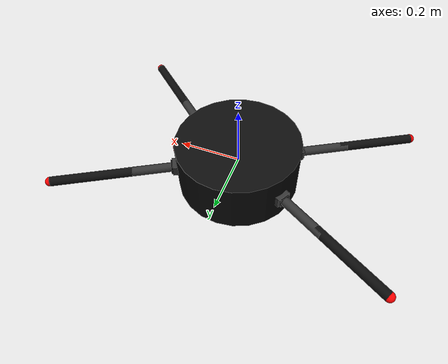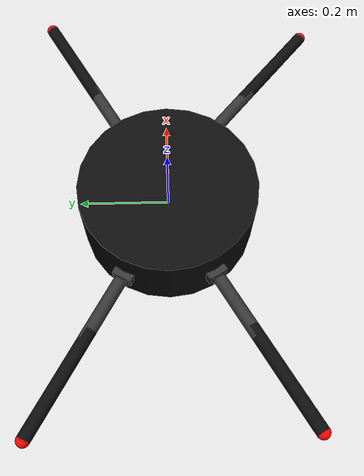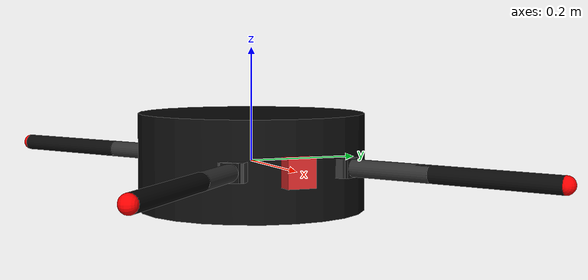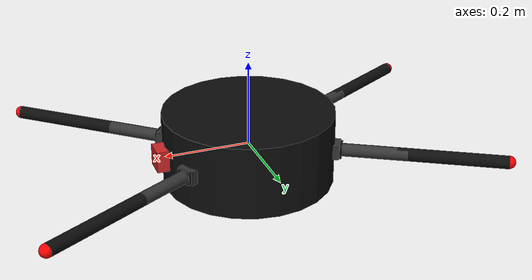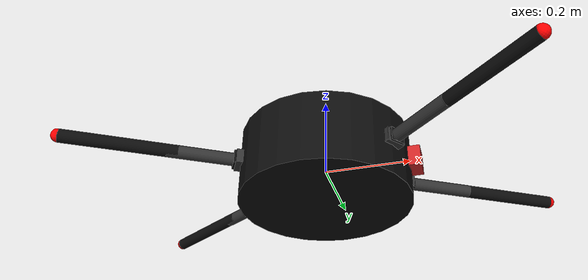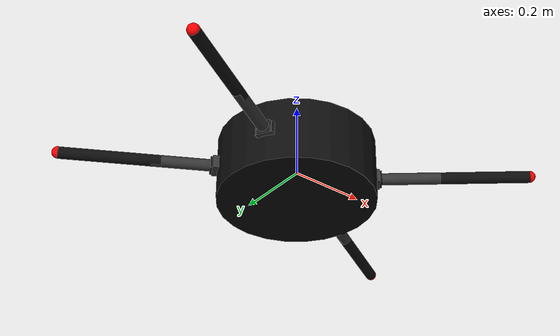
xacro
<?xml version="1.0" ?>
<robot name="ardent" xmlns:xacro="http://www.ros.org/wiki/xacro">

  <xacro:include filename="$(find ardent_description)/config/robot/urdf/ardent_urdf_quad.xacro"/>
  <xacro:include filename="$(find ardent_description)/config/robot/urdf/camera.xacro"/>

  <!-- for more info visit: http://wiki.ros.org/urdf/Tutorials -->

  <link name="base_link"/>

  <xacro:ardent parent="base_link">
      <origin xyz="0 0 0" rpy="0 0 0" />
  </xacro:ardent>

  <gazebo>
    <plugin filename="libgazebo_ros_control.so" name="gazebo_ros_control">
    </plugin>
  </gazebo>

</robot>

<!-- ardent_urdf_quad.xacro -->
<robot xmlns:xacro="http://www.ros.org/wiki/xacro">

<xacro:property name="connect_offset" value="0.01" />
<xacro:property name="femur_offset_y" value="-0.125" />
<xacro:property name="femur_offset_z" value="-0.125" />

<xacro:property name="joint_lower_limit" value ="-${1.5}"/>
<xacro:property name="joint_upper_limit" value ="${1.5}"/>
<xacro:property name="camera_link" value="0.05" />  <!-- Size of square 'camera' box -->

<xacro:macro name="ardent" params="parent *origin">

    <joint name="j_ardent_attachment" type="fixed">
      <parent link="${parent}"/>
      <child link="body"/>
      <xacro:insert_block name="origin" />
    </joint>
    <link name="body">
      <inertial>
        <origin xyz="0 0 0" />
        <mass value="6.8"/>
        <inertia ixx="3.1081800"  ixy="-0.25460189"  ixz="2.0318174" iyy="6.3787776" iyz="0.16417863" izz="5.3316425" />
      </inertial>
      <visual>
        <!--origin xyz="-0.0235 0 -0.03525" rpy="0 0 0" /-->
        <origin xyz="0 0 0" rpy="0 0 0" />
        <geometry>
          <cylinder radius="0.2" length="0.17"/>
          <!--box size="0.102 0.109 0.106" /-->
        </geometry>
        <material name="Orange">
        <color rgba="12 12 12 1.0"/>
      </material>
      </visual>
      <collision>
        <origin xyz="0 0 0" rpy="0 0 0" />
        <geometry>
          <cylinder radius="0.2" length="0.17"/>
        </geometry>
      </collision>
    </link>

    <gazebo>
      <plugin name="p3d_base_controller" filename="libgazebo_ros_p3d.so">
        <alwaysOn>true</alwaysOn>
        <updateRate>50.0</updateRate>
        <bodyName>body</bodyName>
        <topicName>odom</topicName>
        <gaussianNoise>0.01</gaussianNoise>
        <frameNamespace>world</frameNamespace>
        <xyzOffsets> 0 0 0 </xyzOffsets>
        <rpyOffsets>0 0 0 </rpyOffsets>
      </plugin>
    </gazebo>

    <plugin name="gazebo_ros_imu_plugin" filename="libgazebo_ros_imu.so">
      <alwaysOn>true</alwaysOn>
      <bodyName>body</bodyName>
      <topicName>imu/data</topicName>
      <serviceName>imu/service</serviceName>
      <gaussianNoise>0.0</gaussianNoise>
      <updateRate>800.0</updateRate>
    </plugin>

    <!-- Build Leg -->
    <xacro:leg_l xyz="0.175 -0.1  0.001116"  rpy="0 0 5.576" suffix="1"/>
    <xacro:leg_l xyz="-0.175 -0.1  0.001116"  rpy="0 0 -2.62" suffix="2"/>

    <xacro:leg_l xyz="0.175 0.1  0.001116"  rpy="0 0 0.52" suffix="3"/>
    <xacro:leg_l xyz="-0.175 0.1  0.001116"  rpy="0 0 2.62" suffix="4"/>

</xacro:macro>

<xacro:macro name="leg_l" params="xyz rpy suffix">
  <link name="coxa_${suffix}">
    <inertial>
      <origin xyz="0 0 0" rpy="0 0 0"  />
      <mass value="0.024357719"/>
     <inertia ixx="0.0051411124"  ixy="-0.00057530255"  ixz="-0.000024729049" iyy="0.0081915737" iyz="-0.000019223094" izz="0.0011379812" />
    </inertial>
    <visual>
      <origin xyz="0 0 0" rpy="0 0 0"  />
      <geometry>
        <box size="0.022 0.045 0.0325" />
      </geometry>
      <material name="Grey">
        <color rgba="0.20 0.20 0.20 1.0"/>
      </material>
    </visual>
    <collision>
      <origin xyz="0 0 0" rpy="0 0 0"  />
      <geometry>
        <box size="0.022 0.045 0.0325" />
      </geometry>
    </collision>
  </link>

  <link name="c2_${suffix}">
    <inertial>
      <origin xyz="0 0 0" rpy="0 0 0"  />
      <mass value="0.024357719"/>
     <inertia ixx="0.0051411124"  ixy="-0.00057530255"  ixz="-0.000024729049" iyy="0.0081915737" iyz="-0.000019223094" izz="0.0011379812" />
    </inertial>
    <visual>
      <origin xyz="0 0 0" rpy="0 0 0"  />
      <geometry>
        <box size="0.005 0.0325 0.0325" />
      </geometry>
      <material name="Orange">
        <color rgba="12 12 12 1.0"/>
      </material>
    </visual>
    <collision>
      <origin xyz="0 0 0" rpy="0 0 0"  />
      <geometry>
        <box size="0.005 0.0325 0.0325" />
      </geometry>
    </collision>
  </link>

  <link name="femur_${suffix}">
    <inertial>
      <origin xyz="1 0 0" rpy="0 0 0"  />
      <mass value="0.0286"/>
     <inertia ixx="0.00059"  ixy="-0.0"  ixz="-0.0" iyy="0.0" iyz="-0.0" izz="0.00059" />
    </inertial>
    <visual>
      <origin xyz="0.075 0 0" rpy="0 1.57 0"  />
      <geometry>
        <cylinder  radius="0.015" length="0.15" />
      </geometry>
      <material name="Grey">
        <color rgba="0.20 0.20 0.20 1.0"/>
      </material>
    </visual>
    <collision>
      <origin xyz="0.075 0 0" rpy="0 1.57 0"  />
      <geometry>
        <cylinder  radius="0.015" length="0.15" />
      </geometry>
    </collision>
  </link>

  <link name="tibia_${suffix}">
    <inertial>
      <origin xyz="0 0 0" rpy="0 0 0"  />
      <mass value="0.0286"/>
      <!-- g/mm^2 -->
     <inertia ixx="0.00059"  ixy="-0.0"  ixz="-0.0" iyy="0.0" iyz="-0.0" izz="0.00059" />
    </inertial>
    <visual>
      <origin xyz="0.125 0 0" rpy="1.57 0 1.57"  />
      <geometry>
        <cylinder radius="0.015" length="0.25" />
      </geometry>
      <material name="Orange">
        <color rgba="12 12 12 1.0"/>
      </material>
    </visual>
    <collision>
      <origin xyz="0.125 0 0" rpy="1.57 0 1.57"  />
      <geometry>
        <cylinder radius="0.015" length="0.25" />
      </geometry>
    </collision>
  </link>

  <link name="contact_sensor_${suffix}">
    <inertial>
      <origin xyz="0 0 0" rpy="0 0 0"  />
      <mass value="0.005"/>
       <inertia ixx="1.28e-06"  ixy="-0.0"  ixz="-0.0" iyy="1.28e-06" iyz="-0.0" izz="1.28e-06" />
    </inertial>
    <visual>
      <origin xyz="0 0 0" rpy="0 0 0"  />
      <geometry>
        <sphere radius="0.015"/>
      </geometry>
      <material name="Black">
        <color rgba="1.0 0 0 0"/>
      </material>
    </visual>
    <collision>
      <origin xyz="0.0 0 0" rpy="0.0 0 0.0"  />
      <geometry>
        <sphere radius="0.015"/>
      </geometry>
    </collision>
  </link>

  <!-- Joint Definitions -->
  <joint name="j_coxa_${suffix}" type="revolute">
    <parent link="body"/>
    <child link="coxa_${suffix}"/>
    <origin xyz="${xyz}" rpy="${rpy}" />
    <axis xyz="0 0 1" />
    <limit effort="30" velocity="0.5" lower="-3.14" upper="3.14" />
  </joint>

  <joint name="j_c2_${suffix}" type="fixed">
    <parent link="coxa_${suffix}"/>
    <child link="c2_${suffix}"/>
    <origin xyz="0.0135 0 0" rpy="0 0 0" />
    <limit effort="30" velocity="0.5" lower="-3.14" upper="3.14" />
  </joint>

  <joint name="j_femur_${suffix}" type="revolute">
    <parent link="c2_${suffix}"/>
    <child link="femur_${suffix}"/>
    <origin xyz="0 0 0" rpy=" 1.57 0 0" />
    <axis xyz="0 0 1" />
    <limit effort="30" velocity="0.5" lower="-3.14" upper="3.14" />
  </joint>

  <joint name="j_tibia_${suffix}" type="revolute">
    <parent link="femur_${suffix}"/>
    <child link="tibia_${suffix}"/>
    <origin xyz="0.125 0 0" rpy="0 0 0" />
    <axis xyz="0 0 1" />
    <limit effort="30" velocity="0.5" lower="-3.14" upper="3.14" />
  </joint>

  <joint name="j_contact_sensor_${suffix}" type="fixed">
    <parent link="tibia_${suffix}"/>
    <child link="contact_sensor_${suffix}"/>
    <origin xyz="0.25 0 0" rpy="0 0 0" />
  </joint>

  <!-- Force/Contact Sensor -->
  <!-- This should be added later to provide the force sensor feeback to the rest of the robot -->
  <gazebo reference="contact_sensor_${suffix}">
    <sensor name="contact_sensor_${suffix}" type="contact">
      <always_on>true</always_on>
      <update_rate>30</update_rate>
      <contact>
        <collision>contact_sensor_${suffix}_link_collision</collision>
      </contact>
      <plugin name="bumper0_plugin" filename="libgazebo_ros_bumper.so">
        <bumperTopicName>leg_${suffix}/contact_sensor_state</bumperTopicName>
        <frameName>contact_sensor_${suffix}</frameName>
      </plugin>
    </sensor>
  </gazebo>

  <!-- Transmissions -->
  <transmission name="t_coxa_${suffix}">
    <type>transmission_interface/SimpleTransmission</type>
    <joint name="j_coxa_${suffix}">
      <hardwareInterface>hardware_interface/EffortJointInterface</hardwareInterface>
    </joint>
    <actuator name="j_coxa_${suffix}">
      <hardwareInterface>hardware_interface/EffortJointInterface</hardwareInterface>
      <mechanicalReduction>1</mechanicalReduction>
    </actuator>
  </transmission>

    <transmission name="t_femur_${suffix}">
    <type>transmission_interface/SimpleTransmission</type>
    <joint name="j_femur_${suffix}">
      <hardwareInterface>hardware_interface/EffortJointInterface</hardwareInterface>
    </joint>
    <actuator name="j_femur_${suffix}">
      <hardwareInterface>hardware_interface/EffortJointInterface</hardwareInterface>
      <mechanicalReduction>1</mechanicalReduction>
    </actuator>
  </transmission>

    <transmission name="t_tibia_${suffix}">
    <type>transmission_interface/SimpleTransmission</type>
    <joint name="j_tibia_${suffix}">
      <hardwareInterface>hardware_interface/EffortJointInterface</hardwareInterface>
    </joint>
    <actuator name="j_tibia_${suffix}">
      <hardwareInterface>hardware_interface/EffortJointInterface</hardwareInterface>
      <mechanicalReduction>1</mechanicalReduction>
    </actuator>
  </transmission>

  <gazebo reference="body">
    <material>Gazebo/Orange</material>
  </gazebo>

  <gazebo reference="coxa_${suffix}">
    <material>Gazebo/Black</material>
  </gazebo>

  <gazebo reference="c2_${suffix}">
    <material>Gazebo/Orange</material>
  </gazebo>

  <gazebo reference="femur_${suffix}">
    <material>Gazebo/Black</material>
  </gazebo>

  <gazebo reference="tibia_${suffix}">
    <material>Gazebo/Orange</material>
  </gazebo>
  <gazebo reference="contact_sensor_${suffix}">
    <material>Gazebo/Black</material>
  </gazebo>

</xacro:macro>

</robot>

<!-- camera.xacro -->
<robot xmlns:xacro="http://www.ros.org/wiki/xacro">

    <xacro:property name="PI" value="3.1415926535897931"/>
    <xacro:property name="camera_link" value="0.05" />  <!-- Size of square 'camera' box that does measuring -->
    <xacro:property name="axel_offset" value="0.05" /> <!-- Space btw top of beam and the each joint -->
    <xacro:property name="displacement" value="0.3" /> <!-- Link-->

    <joint name="camera_joint" type="fixed">
        <axis xyz="0 1 0" />
        <origin xyz="${displacement - axel_offset*2} 0 0" rpy="0 0 0"/>
        <parent link="body"/>
        <child link="camera_link"/>
    </joint>

    <!-- Camera -->
    <link name="camera_link">
        <collision>
            <origin xyz="0 0 0" rpy="0 0 0"/>
            <geometry>
                <box size="${camera_link} ${camera_link} ${camera_link}"/>
            </geometry>
        </collision>

        <visual>
            <origin xyz="0 0 0" rpy="0 0 0"/>
            <geometry>
                <box size="${camera_link} ${camera_link} ${camera_link}"/>
            </geometry>
            <material name="red"/>
        </visual>

        <inertial>
            <mass value="1e-5" />
            <origin xyz="0 0 0" rpy="0 0 0"/>
            <inertia ixx="1e-6" ixy="0" ixz="0" iyy="1e-6" iyz="0" izz="1e-6" />
        </inertial>
    </link>

    <!-- generate an optical frame http://www.ros.org/reps/rep-0103.html#suffix-frames
        so that ros and opencv can operate on the camera frame correctly -->
    <joint name="camera_optical_joint" type="fixed">
        <!-- these values have to be these values otherwise the gazebo camera image
            won't be aligned properly with the frame it is supposedly originating from -->
        <origin xyz="0 0 0" rpy="${-pi/2} 0 ${-pi/2}"/>
        <parent link="camera_link"/>
        <child link="camera_link_optical"/>
    </joint>

    <link name="camera_link_optical">
    </link>
</robot>
